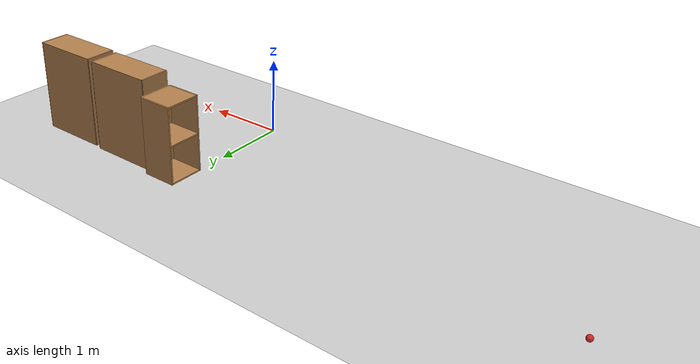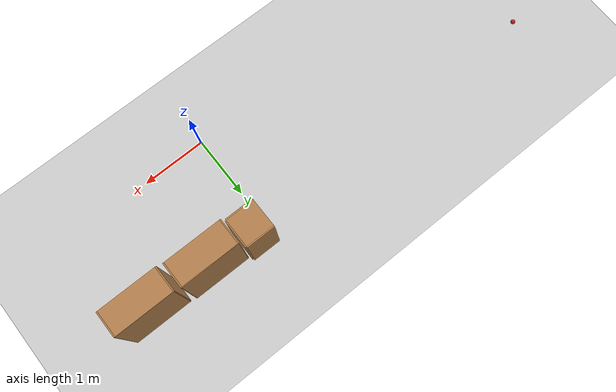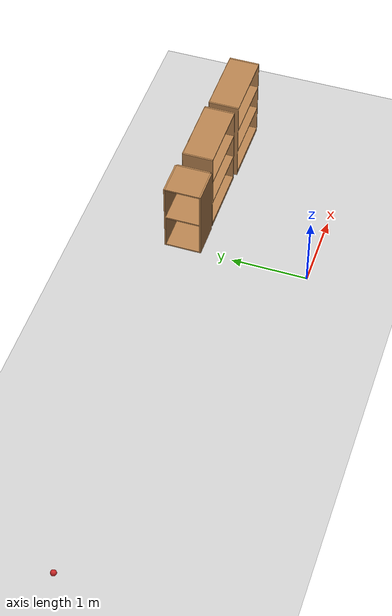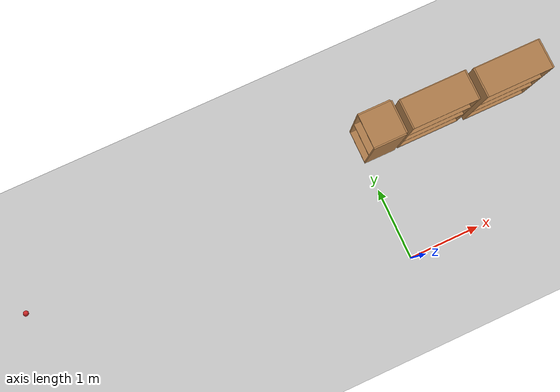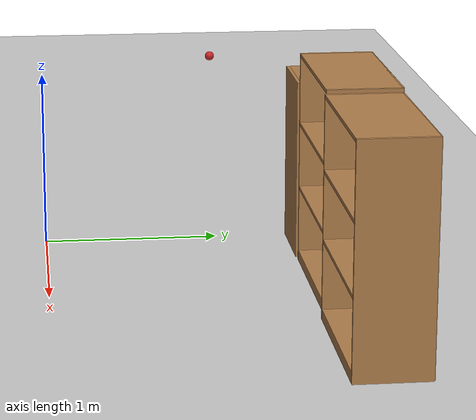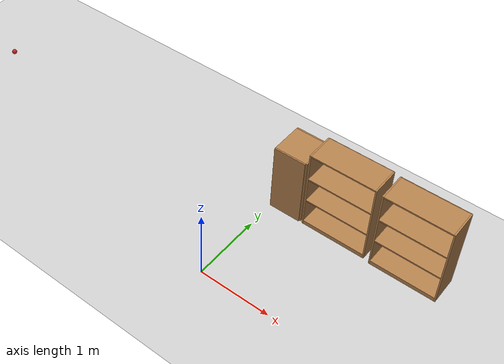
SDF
<sdf version="1.7">
 <world name="default">
  <light name="sun" type="directional">
   <pose>0 0 10 0 -0 0</pose>
   <diffuse>0.8 0.8 0.8 1</diffuse>
   <specular>0.2 0.2 0.2 1</specular>
   <attenuation>
    <range>1000</range>
    <constant>0.9</constant>
    <linear>0.01</linear>
    <quadratic>0.001</quadratic>
   </attenuation>
   <direction>-0.5 0.1 -0.9</direction>
   <spot><inner_angle>0</inner_angle><outer_angle>0</outer_angle><falloff>0</falloff></spot>
  </light>
  <model name="ground_plane">
   <static>1</static>
   <link name="link">
    <collision name="collision">
     <geometry><plane><normal>0 0 1</normal><size>100 100</size></plane></geometry>
     <surface><friction><ode><mu>100</mu><mu2>50</mu2></ode></friction></surface>
    </collision>
    <visual name="visual">
     <cast_shadows>0</cast_shadows>
     <geometry><plane><normal>0 0 1</normal><size>100 100</size></plane></geometry>
     <material>
      <script><uri>file://media/materials/scripts/gazebo.material</uri><name>Gazebo/Grey</name></script>
     </material>
    </visual>
   </link>
  </model>
  <gravity>0 0 -9.8</gravity>
  <magnetic_field>6e-06 2.3e-05 -4.2e-05</magnetic_field>
  <atmosphere type="adiabatic"/>
  <physics type="ode">
   <max_step_size>0.001</max_step_size>
   <real_time_factor>1</real_time_factor>
   <real_time_update_rate>1000</real_time_update_rate>
  </physics>
  <scene><ambient>0.4 0.4 0.4 1</ambient><background>0.7 0.7 0.7 1</background><shadows>1</shadows></scene>
  <audio><device>default</device></audio>
  <spherical_coordinates>
   <surface_model>EARTH_WGS84</surface_model>
   <latitude_deg>0</latitude_deg>
   <longitude_deg>0</longitude_deg>
   <elevation>0</elevation>
   <heading_deg>0</heading_deg>
  </spherical_coordinates>
  <model name="cabinet">
   <static>1</static>
   <link name="cabinet_bottom_plate">
    <inertial>
     <pose>0 0 -1 0 -0 0</pose>
     <inertia><ixx>2.05</ixx><ixy>0</ixy><ixz>0</ixz><iyy>2.05</iyy><iyz>0</iyz><izz>2.05</izz></inertia>
     <mass>25</mass>
    </inertial>
    <collision name="cabinet_bottom_plate_geom">
     <pose>0 0 0.01 0 -0 0</pose>
     <geometry><box><size>0.45 0.45 0.02</size></box></geometry>
    </collision>
    <visual name="cabinet_bottom_plate_geom_visual">
     <pose>0 0 0.01 0 -0 0</pose>
     <geometry><box><size>0.45 0.45 0.02</size></box></geometry>
     <material>
      <script><uri>file://media/materials/scripts/gazebo.material</uri><name>Gazebo/Wood</name></script>
     </material>
    </visual>
    <collision name="cabinet_bottom_plate_geom_cabinet_back_plate">
     <pose>0.235 0 0.51 0 -0 0</pose>
     <geometry><box><size>0.02 0.45 1.02</size></box></geometry>
    </collision>
    <visual name="cabinet_bottom_plate_geom_cabinet_back_plate_visual">
     <pose>0.235 0 0.51 0 -0 0</pose>
     <geometry><box><size>0.02 0.45 1.02</size></box></geometry>
     <material>
      <script><uri>file://media/materials/scripts/gazebo.material</uri><name>Gazebo/Wood</name></script>
     </material>
    </visual>
    <collision name="cabinet_bottom_plate_geom_cabinet_left_plate">
     <pose>0 0.235 0.51 0 -0 0</pose>
     <geometry><box><size>0.45 0.02 1.02</size></box></geometry>
    </collision>
    <visual name="cabinet_bottom_plate_geom_cabinet_left_plate_visual">
     <pose>0 0.235 0.51 0 -0 0</pose>
     <geometry><box><size>0.45 0.02 1.02</size></box></geometry>
     <material>
      <script><uri>file://media/materials/scripts/gazebo.material</uri><name>Gazebo/Wood</name></script>
     </material>
    </visual>
    <collision name="cabinet_bottom_plate_geom_cabinet_middle_plate">
     <pose>0 0 0.51 0 -0 0</pose>
     <geometry><box><size>0.45 0.45 0.02</size></box></geometry>
    </collision>
    <visual name="cabinet_bottom_plate_geom_cabinet_middle_plate_visual">
     <pose>0 0 0.51 0 -0 0</pose>
     <geometry><box><size>0.45 0.45 0.02</size></box></geometry>
     <material>
      <script><uri>file://media/materials/scripts/gazebo.material</uri><name>Gazebo/Wood</name></script>
     </material>
    </visual>
    <collision name="cabinet_bottom_plate_geom_cabinet_right_plate">
     <pose>0 -0.235 0.51 0 -0 0</pose>
     <geometry><box><size>0.45 0.02 1.02</size></box></geometry>
    </collision>
    <visual name="cabinet_bottom_plate_geom_cabinet_right_plate_visual">
     <pose>0 -0.235 0.51 0 -0 0</pose>
     <geometry><box><size>0.45 0.02 1.02</size></box></geometry>
     <material>
      <script><uri>file://media/materials/scripts/gazebo.material</uri><name>Gazebo/Wood</name></script>
     </material>
    </visual>
    <collision name="cabinet_bottom_plate_geom_cabinet_top_plate">
     <pose>0 0 1.01 0 -0 0</pose>
     <geometry><box><size>0.45 0.45 0.02</size></box></geometry>
    </collision>
    <visual name="cabinet_bottom_plate_geom_cabinet_top_plate_visual">
     <pose>0 0 1.01 0 -0 0</pose>
     <geometry><box><size>0.45 0.45 0.02</size></box></geometry>
     <material>
      <script><uri>file://media/materials/scripts/gazebo.material</uri><name>Gazebo/Wood</name></script>
     </material>
    </visual>
   </link>
   <pose>0.216734 1.66062 0 0 -0 0</pose>
  </model>
  <model name="cricket_ball">
   <link name="link">
    <pose>0 0 0.0375 0 -0 0</pose>
    <inertial>
     <mass>0.1467</mass>
     <inertia>
      <ixx>8.25187e-05</ixx>
      <ixy>0</ixy>
      <ixz>0</ixz>
      <iyy>8.25187e-05</iyy>
      <iyz>0</iyz>
      <izz>8.25187e-05</izz>
     </inertia>
    </inertial>
    <collision name="collision">
     <geometry><sphere><radius>0.0375</radius></sphere></geometry>
     <surface>
      <contact>
       <poissons_ratio>0.347</poissons_ratio>
       <elastic_modulus>8.8e+09</elastic_modulus>
       <ode><kp>100000</kp><kd>100</kd><max_vel>100</max_vel><min_depth>0.001</min_depth></ode>
      </contact>
      <friction>
       <torsional>
        <coefficient>1</coefficient>
        <use_patch_radius>0</use_patch_radius>
        <surface_radius>0.01</surface_radius>
       </torsional>
      </friction>
     </surface>
    </collision>
    <visual name="visual">
     <geometry><sphere><radius>0.0375</radius></sphere></geometry>
     <material>
      <script><uri>file://media/materials/scripts/gazebo.material</uri><name>Gazebo/Red</name></script>
     </material>
    </visual>
    <velocity_decay><linear>0</linear><angular>0.005</angular></velocity_decay>
   </link>
   <pose>-4.96587 1.46168 -0.001014 0 -0 0</pose>
  </model>
  <model name="bookshelf">
   <static>1</static>
   <link name="link">
    <inertial><mass>1</mass></inertial>
    <collision name="back">
     <pose>0 0.005 0.6 0 -0 0</pose>
     <geometry><box><size>0.9 0.01 1.2</size></box></geometry>
    </collision>
    <visual name="visual1">
     <pose>0 0.005 0.6 0 -0 0</pose>
     <geometry><box><size>0.9 0.01 1.2</size></box></geometry>
     <material>
      <script><uri>file://media/materials/scripts/gazebo.material</uri><name>Gazebo/Wood</name></script>
     </material>
    </visual>
    <collision name="left_side">
     <pose>0.45 -0.195 0.6 0 -0 0</pose>
     <geometry><box><size>0.02 0.4 1.2</size></box></geometry>
    </collision>
    <visual name="visual2">
     <pose>0.45 -0.195 0.6 0 -0 0</pose>
     <geometry><box><size>0.02 0.4 1.2</size></box></geometry>
     <material>
      <script><uri>file://media/materials/scripts/gazebo.material</uri><name>Gazebo/Wood</name></script>
     </material>
    </visual>
    <collision name="right_side">
     <pose>-0.45 -0.195 0.6 0 -0 0</pose>
     <geometry><box><size>0.02 0.4 1.2</size></box></geometry>
    </collision>
    <visual name="visual3">
     <pose>-0.45 -0.195 0.6 0 -0 0</pose>
     <geometry><box><size>0.02 0.4 1.2</size></box></geometry>
     <material>
      <script><uri>file://media/materials/scripts/gazebo.material</uri><name>Gazebo/Wood</name></script>
     </material>
    </visual>
    <collision name="bottom">
     <pose>0 -0.195 0.03 0 -0 0</pose>
     <geometry><box><size>0.88 0.4 0.06</size></box></geometry>
    </collision>
    <visual name="visual4">
     <pose>0 -0.195 0.03 0 -0 0</pose>
     <geometry><box><size>0.88 0.4 0.06</size></box></geometry>
     <material>
      <script><uri>file://media/materials/scripts/gazebo.material</uri><name>Gazebo/Wood</name></script>
     </material>
    </visual>
    <collision name="top">
     <pose>0 -0.195 1.19 0 -0 0</pose>
     <geometry><box><size>0.88 0.4 0.02</size></box></geometry>
    </collision>
    <visual name="visual5">
     <pose>0 -0.195 1.19 0 -0 0</pose>
     <geometry><box><size>0.88 0.4 0.02</size></box></geometry>
     <material>
      <script><uri>file://media/materials/scripts/gazebo.material</uri><name>Gazebo/Wood</name></script>
     </material>
    </visual>
    <collision name="low_shelf">
     <pose>0 -0.195 0.43 0 -0 0</pose>
     <geometry><box><size>0.88 0.4 0.02</size></box></geometry>
    </collision>
    <visual name="visual6">
     <pose>0 -0.195 0.43 0 -0 0</pose>
     <geometry><box><size>0.88 0.4 0.02</size></box></geometry>
     <material>
      <script><uri>file://media/materials/scripts/gazebo.material</uri><name>Gazebo/Wood</name></script>
     </material>
    </visual>
    <collision name="high_shelf">
     <pose>0 -0.195 0.8 0 -0 0</pose>
     <geometry><box><size>0.88 0.4 0.02</size></box></geometry>
    </collision>
    <visual name="visual7">
     <pose>0 -0.195 0.8 0 -0 0</pose>
     <geometry><box><size>0.88 0.4 0.02</size></box></geometry>
     <material>
      <script><uri>file://media/materials/scripts/gazebo.material</uri><name>Gazebo/Wood</name></script>
     </material>
    </visual>
   </link>
   <pose>0.947728 1.81701 0 0 -0 0</pose>
  </model>
  <model name="bookshelf_0">
   <static>1</static>
   <link name="link">
    <inertial><mass>1</mass></inertial>
    <collision name="back">
     <pose>0 0.005 0.6 0 -0 0</pose>
     <geometry><box><size>0.9 0.01 1.2</size></box></geometry>
    </collision>
    <visual name="visual1">
     <pose>0 0.005 0.6 0 -0 0</pose>
     <geometry><box><size>0.9 0.01 1.2</size></box></geometry>
     <material>
      <script><uri>file://media/materials/scripts/gazebo.material</uri><name>Gazebo/Wood</name></script>
     </material>
    </visual>
    <collision name="left_side">
     <pose>0.45 -0.195 0.6 0 -0 0</pose>
     <geometry><box><size>0.02 0.4 1.2</size></box></geometry>
    </collision>
    <visual name="visual2">
     <pose>0.45 -0.195 0.6 0 -0 0</pose>
     <geometry><box><size>0.02 0.4 1.2</size></box></geometry>
     <material>
      <script><uri>file://media/materials/scripts/gazebo.material</uri><name>Gazebo/Wood</name></script>
     </material>
    </visual>
    <collision name="right_side">
     <pose>-0.45 -0.195 0.6 0 -0 0</pose>
     <geometry><box><size>0.02 0.4 1.2</size></box></geometry>
    </collision>
    <visual name="visual3">
     <pose>-0.45 -0.195 0.6 0 -0 0</pose>
     <geometry><box><size>0.02 0.4 1.2</size></box></geometry>
     <material>
      <script><uri>file://media/materials/scripts/gazebo.material</uri><name>Gazebo/Wood</name></script>
     </material>
    </visual>
    <collision name="bottom">
     <pose>0 -0.195 0.03 0 -0 0</pose>
     <geometry><box><size>0.88 0.4 0.06</size></box></geometry>
    </collision>
    <visual name="visual4">
     <pose>0 -0.195 0.03 0 -0 0</pose>
     <geometry><box><size>0.88 0.4 0.06</size></box></geometry>
     <material>
      <script><uri>file://media/materials/scripts/gazebo.material</uri><name>Gazebo/Wood</name></script>
     </material>
    </visual>
    <collision name="top">
     <pose>0 -0.195 1.19 0 -0 0</pose>
     <geometry><box><size>0.88 0.4 0.02</size></box></geometry>
    </collision>
    <visual name="visual5">
     <pose>0 -0.195 1.19 0 -0 0</pose>
     <geometry><box><size>0.88 0.4 0.02</size></box></geometry>
     <material>
      <script><uri>file://media/materials/scripts/gazebo.material</uri><name>Gazebo/Wood</name></script>
     </material>
    </visual>
    <collision name="low_shelf">
     <pose>0 -0.195 0.43 0 -0 0</pose>
     <geometry><box><size>0.88 0.4 0.02</size></box></geometry>
    </collision>
    <visual name="visual6">
     <pose>0 -0.195 0.43 0 -0 0</pose>
     <geometry><box><size>0.88 0.4 0.02</size></box></geometry>
     <material>
      <script><uri>file://media/materials/scripts/gazebo.material</uri><name>Gazebo/Wood</name></script>
     </material>
    </visual>
    <collision name="high_shelf">
     <pose>0 -0.195 0.8 0 -0 0</pose>
     <geometry><box><size>0.88 0.4 0.02</size></box></geometry>
    </collision>
    <visual name="visual7">
     <pose>0 -0.195 0.8 0 -0 0</pose>
     <geometry><box><size>0.88 0.4 0.02</size></box></geometry>
     <material>
      <script><uri>file://media/materials/scripts/gazebo.material</uri><name>Gazebo/Wood</name></script>
     </material>
    </visual>
   </link>
   <pose>1.94967 1.79371 0 0 -0 0</pose>
  </model>
 </world>
</sdf>
